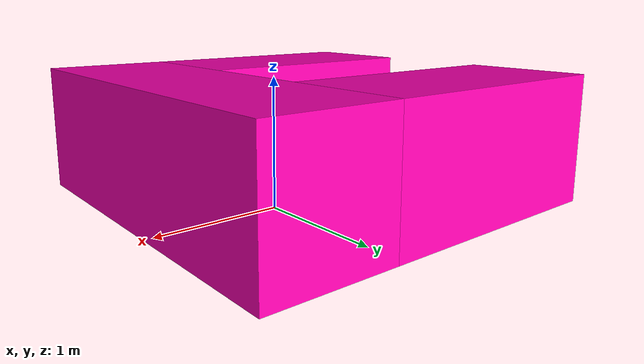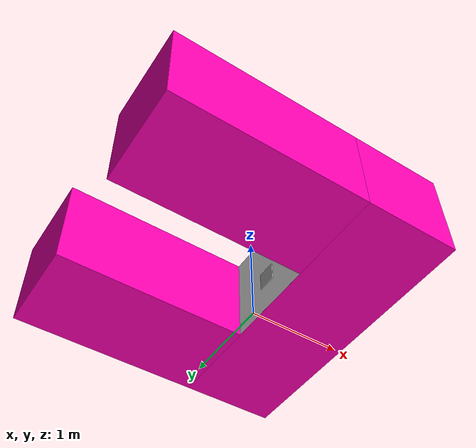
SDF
<?xml version='1.0'?>
<sdf version='1.7'>
  <model name='UDOCK_V2'>
    <link name='link'>
      <pose>0.056744 -0.170156 0.4 0 -0 0</pose>
      <self_collide>0</self_collide>
      <enable_wind>0</enable_wind>
      <kinematic>0</kinematic>
      <visual name='visual'>
        <geometry>
          <box>
            <size>0.01 0.2 0.2</size>
          </box>
        </geometry>
        <material>
          <script>
            <uri>model://target_APRILTAG_36H10_id0/materials/scripts</uri>
            <uri>model://target_APRILTAG_36H10_id0/materials/textures</uri>
            <name>target_APRILTAG_36H10_id0/Diffuse</name>
          </script>
          <shader type='pixel'/>
          <emissive>0 0 0 1</emissive>
        </material>
        <pose>0 0 0 0 -0 0</pose>
        <transparency>0</transparency>
        <cast_shadows>1</cast_shadows>
      </visual>
      <collision name='collision'>
        <laser_retro>0</laser_retro>
        <max_contacts>10</max_contacts>
        <pose>0 0 0 0 -0 0</pose>
        <geometry>
          <box>
            <size>0.01 0.2 0.2</size>
          </box>
        </geometry>
        <surface>
          <friction>
            <ode>
              <mu>1</mu>
              <mu2>1</mu2>
              <fdir1>0 0 0</fdir1>
              <slip1>0</slip1>
              <slip2>0</slip2>
            </ode>
            <torsional>
              <coefficient>1</coefficient>
              <patch_radius>0</patch_radius>
              <surface_radius>0</surface_radius>
              <use_patch_radius>1</use_patch_radius>
              <ode>
                <slip>0</slip>
              </ode>
            </torsional>
          </friction>
          <bounce>
            <restitution_coefficient>0</restitution_coefficient>
            <threshold>1e+06</threshold>
          </bounce>
          <contact>
            <collide_without_contact>0</collide_without_contact>
            <collide_without_contact_bitmask>1</collide_without_contact_bitmask>
            <collide_bitmask>1</collide_bitmask>
            <ode>
              <soft_cfm>0</soft_cfm>
              <soft_erp>0.2</soft_erp>
              <kp>1e+13</kp>
              <kd>1</kd>
              <max_vel>0.01</max_vel>
              <min_depth>0</min_depth>
            </ode>
            <bullet>
              <split_impulse>1</split_impulse>
              <split_impulse_penetration_threshold>-0.01</split_impulse_penetration_threshold>
              <soft_cfm>0</soft_cfm>
              <soft_erp>0.2</soft_erp>
              <kp>1e+13</kp>
              <kd>1</kd>
            </bullet>
          </contact>
        </surface>
      </collision>
    </link>
    <link name='link_3'>
      <inertial>
        <mass>1</mass>
        <inertia>
          <ixx>0.166667</ixx>
          <ixy>0</ixy>
          <ixz>0</ixz>
          <iyy>0.166667</iyy>
          <iyz>0</iyz>
          <izz>0.166667</izz>
        </inertia>
        <pose>0 0 0 0 -0 0</pose>
      </inertial>
      <pose>0.065744 -0.170156 0.5 0 -0 0</pose>
      <gravity>1</gravity>
      <self_collide>0</self_collide>
      <kinematic>0</kinematic>
      <enable_wind>0</enable_wind>
      <visual name='visual'>
        <pose>0 0 0 0 -0 0</pose>
        <geometry>
          <box>
            <size>0.001 1 1</size>
          </box>
        </geometry>
        <material>
          <lighting>1</lighting>
          <script>
            <uri>model://UDOCK_with_id0_dist/materials/scripts</uri>
            <uri>model://UDOCK_with_id0_dist/materials/textures</uri>
            <name>distraction/Diffuse</name>
          </script>
          <shader type='pixel'>
            <normal_map>__default__</normal_map>
          </shader>
          <emissive>0 0 0 1</emissive>
          <ambient>1 1 1 1</ambient>
          <diffuse>1 1 1 1</diffuse>
          <specular>0 0 0 1</specular>
        </material>
        <transparency>0</transparency>
        <cast_shadows>1</cast_shadows>
      </visual>
      <collision name='collision'>
        <laser_retro>0</laser_retro>
        <max_contacts>10</max_contacts>
        <pose>0 0 0 0 -0 0</pose>
        <geometry>
          <box>
            <size>0.001 1 1</size>
          </box>
        </geometry>
        <surface>
          <friction>
            <ode>
              <mu>1</mu>
              <mu2>1</mu2>
              <fdir1>0 0 0</fdir1>
              <slip1>0</slip1>
              <slip2>0</slip2>
            </ode>
            <torsional>
              <coefficient>1</coefficient>
              <patch_radius>0</patch_radius>
              <surface_radius>0</surface_radius>
              <use_patch_radius>1</use_patch_radius>
              <ode>
                <slip>0</slip>
              </ode>
            </torsional>
          </friction>
          <bounce>
            <restitution_coefficient>0</restitution_coefficient>
            <threshold>1e+06</threshold>
          </bounce>
          <contact>
            <collide_without_contact>0</collide_without_contact>
            <collide_without_contact_bitmask>1</collide_without_contact_bitmask>
            <collide_bitmask>1</collide_bitmask>
            <ode>
              <soft_cfm>0</soft_cfm>
              <soft_erp>0.2</soft_erp>
              <kp>1e+13</kp>
              <kd>1</kd>
              <max_vel>0.01</max_vel>
              <min_depth>0</min_depth>
            </ode>
            <bullet>
              <split_impulse>1</split_impulse>
              <split_impulse_penetration_threshold>-0.01</split_impulse_penetration_threshold>
              <soft_cfm>0</soft_cfm>
              <soft_erp>0.2</soft_erp>
              <kp>1e+13</kp>
              <kd>1</kd>
            </bullet>
          </contact>
        </surface>
      </collision>
    </link>
    <link name='link_7'>
      <inertial>
        <mass>1</mass>
        <inertia>
          <ixx>0.166667</ixx>
          <ixy>0</ixy>
          <ixz>0</ixz>
          <iyy>0.166667</iyy>
          <iyz>0</iyz>
          <izz>0.166667</izz>
        </inertia>
        <pose>0 0 0 0 -0 0</pose>
      </inertial>
      <pose>0.566744 -0.170156 0.5 0 -0 0</pose>
      <gravity>1</gravity>
      <self_collide>0</self_collide>
      <kinematic>0</kinematic>
      <enable_wind>0</enable_wind>
      <visual name='visual'>
        <pose>0 0 0 0 -0 0</pose>
        <geometry>
          <box>
            <size>1 3 1</size>
          </box>
        </geometry>
        <material>
          <lighting>1</lighting>
          <script>
            <uri>file://media/materials/scripts/gazebo.material</uri>
            <name>Gazebo/Grey</name>
          </script>
          <shader type='pixel'>
            <normal_map>__default__</normal_map>
          </shader>
          <ambient>1 0 0 1</ambient>
          <diffuse>1 0 0.7 1</diffuse>
          <specular>0.01 0.01 0.01 1</specular>
          <emissive>0 0 0 1</emissive>
        </material>
        <transparency>0</transparency>
        <cast_shadows>1</cast_shadows>
      </visual>
      <collision name='collision'>
        <laser_retro>0</laser_retro>
        <max_contacts>10</max_contacts>
        <pose>0 0 0 0 -0 0</pose>
        <geometry>
          <box>
            <size>1 3 1</size>
          </box>
        </geometry>
        <surface>
          <friction>
            <ode>
              <mu>1</mu>
              <mu2>1</mu2>
              <fdir1>0 0 0</fdir1>
              <slip1>0</slip1>
              <slip2>0</slip2>
            </ode>
            <torsional>
              <coefficient>1</coefficient>
              <patch_radius>0</patch_radius>
              <surface_radius>0</surface_radius>
              <use_patch_radius>1</use_patch_radius>
              <ode>
                <slip>0</slip>
              </ode>
            </torsional>
          </friction>
          <bounce>
            <restitution_coefficient>0</restitution_coefficient>
            <threshold>1e+06</threshold>
          </bounce>
          <contact>
            <collide_without_contact>0</collide_without_contact>
            <collide_without_contact_bitmask>1</collide_without_contact_bitmask>
            <collide_bitmask>1</collide_bitmask>
            <ode>
              <soft_cfm>0</soft_cfm>
              <soft_erp>0.2</soft_erp>
              <kp>1e+13</kp>
              <kd>1</kd>
              <max_vel>0.01</max_vel>
              <min_depth>0</min_depth>
            </ode>
            <bullet>
              <split_impulse>1</split_impulse>
              <split_impulse_penetration_threshold>-0.01</split_impulse_penetration_threshold>
              <soft_cfm>0</soft_cfm>
              <soft_erp>0.2</soft_erp>
              <kp>1e+13</kp>
              <kd>1</kd>
            </bullet>
          </contact>
        </surface>
      </collision>
    </link>
    <link name='link_8'>
      <inertial>
        <mass>1</mass>
        <inertia>
          <ixx>0.166667</ixx>
          <ixy>0</ixy>
          <ixz>0</ixz>
          <iyy>0.166667</iyy>
          <iyz>0</iyz>
          <izz>0.166667</izz>
        </inertia>
        <pose>0 0 0 0 -0 0</pose>
      </inertial>
      <pose>-0.933256 -1.17016 0.5 0 -0 0</pose>
      <gravity>1</gravity>
      <self_collide>0</self_collide>
      <kinematic>0</kinematic>
      <enable_wind>0</enable_wind>
      <visual name='visual'>
        <pose>0 0 0 0 -0 0</pose>
        <geometry>
          <box>
            <size>2 1 1</size>
          </box>
        </geometry>
        <material>
          <lighting>1</lighting>
          <script>
            <uri>file://media/materials/scripts/gazebo.material</uri>
            <name>Gazebo/Grey</name>
          </script>
          <shader type='pixel'>
            <normal_map>__default__</normal_map>
          </shader>
          <ambient>1 0 0 1</ambient>
          <diffuse>1 0 0.7 1</diffuse>
          <specular>0.01 0.01 0.01 1</specular>
          <emissive>0 0 0 1</emissive>
        </material>
        <transparency>0</transparency>
        <cast_shadows>1</cast_shadows>
      </visual>
      <collision name='collision'>
        <laser_retro>0</laser_retro>
        <max_contacts>10</max_contacts>
        <pose>0 0 0 0 -0 0</pose>
        <geometry>
          <box>
            <size>2 1 1</size>
          </box>
        </geometry>
        <surface>
          <friction>
            <ode>
              <mu>1</mu>
              <mu2>1</mu2>
              <fdir1>0 0 0</fdir1>
              <slip1>0</slip1>
              <slip2>0</slip2>
            </ode>
            <torsional>
              <coefficient>1</coefficient>
              <patch_radius>0</patch_radius>
              <surface_radius>0</surface_radius>
              <use_patch_radius>1</use_patch_radius>
              <ode>
                <slip>0</slip>
              </ode>
            </torsional>
          </friction>
          <bounce>
            <restitution_coefficient>0</restitution_coefficient>
            <threshold>1e+06</threshold>
          </bounce>
          <contact>
            <collide_without_contact>0</collide_without_contact>
            <collide_without_contact_bitmask>1</collide_without_contact_bitmask>
            <collide_bitmask>1</collide_bitmask>
            <ode>
              <soft_cfm>0</soft_cfm>
              <soft_erp>0.2</soft_erp>
              <kp>1e+13</kp>
              <kd>1</kd>
              <max_vel>0.01</max_vel>
              <min_depth>0</min_depth>
            </ode>
            <bullet>
              <split_impulse>1</split_impulse>
              <split_impulse_penetration_threshold>-0.01</split_impulse_penetration_threshold>
              <soft_cfm>0</soft_cfm>
              <soft_erp>0.2</soft_erp>
              <kp>1e+13</kp>
              <kd>1</kd>
            </bullet>
          </contact>
        </surface>
      </collision>
    </link>
    <link name='link_9'>
      <inertial>
        <mass>1</mass>
        <inertia>
          <ixx>0.166667</ixx>
          <ixy>0</ixy>
          <ixz>0</ixz>
          <iyy>0.166667</iyy>
          <iyz>0</iyz>
          <izz>0.166667</izz>
        </inertia>
        <pose>0 0 0 0 -0 0</pose>
      </inertial>
      <pose>-0.933256 0.829844 0.5 0 -0 0</pose>
      <gravity>1</gravity>
      <self_collide>0</self_collide>
      <kinematic>0</kinematic>
      <enable_wind>0</enable_wind>
      <visual name='visual'>
        <pose>0 0 0 0 -0 0</pose>
        <geometry>
          <box>
            <size>2 1 1</size>
          </box>
        </geometry>
        <material>
          <lighting>1</lighting>
          <script>
            <uri>file://media/materials/scripts/gazebo.material</uri>
            <name>Gazebo/Grey</name>
          </script>
          <shader type='pixel'>
            <normal_map>__default__</normal_map>
          </shader>
          <ambient>1 0 0 1</ambient>
          <diffuse>1 0 0.7 1</diffuse>
          <specular>0.01 0.01 0.01 1</specular>
          <emissive>0 0 0 1</emissive>
        </material>
        <transparency>0</transparency>
        <cast_shadows>1</cast_shadows>
      </visual>
      <collision name='collision'>
        <laser_retro>0</laser_retro>
        <max_contacts>10</max_contacts>
        <pose>0 0 0 0 -0 0</pose>
        <geometry>
          <box>
            <size>2 1 1</size>
          </box>
        </geometry>
        <surface>
          <friction>
            <ode>
              <mu>1</mu>
              <mu2>1</mu2>
              <fdir1>0 0 0</fdir1>
              <slip1>0</slip1>
              <slip2>0</slip2>
            </ode>
            <torsional>
              <coefficient>1</coefficient>
              <patch_radius>0</patch_radius>
              <surface_radius>0</surface_radius>
              <use_patch_radius>1</use_patch_radius>
              <ode>
                <slip>0</slip>
              </ode>
            </torsional>
          </friction>
          <bounce>
            <restitution_coefficient>0</restitution_coefficient>
            <threshold>1e+06</threshold>
          </bounce>
          <contact>
            <collide_without_contact>0</collide_without_contact>
            <collide_without_contact_bitmask>1</collide_without_contact_bitmask>
            <collide_bitmask>1</collide_bitmask>
            <ode>
              <soft_cfm>0</soft_cfm>
              <soft_erp>0.2</soft_erp>
              <kp>1e+13</kp>
              <kd>1</kd>
              <max_vel>0.01</max_vel>
              <min_depth>0</min_depth>
            </ode>
            <bullet>
              <split_impulse>1</split_impulse>
              <split_impulse_penetration_threshold>-0.01</split_impulse_penetration_threshold>
              <soft_cfm>0</soft_cfm>
              <soft_erp>0.2</soft_erp>
              <kp>1e+13</kp>
              <kd>1</kd>
            </bullet>
          </contact>
        </surface>
      </collision>
    </link>
    <joint name='link_7_JOINT_0' type='fixed'>
      <parent>link_7</parent>
      <child>link_3</child>
      <pose>0 0 0 0 -0 0</pose>
      <physics>
        <ode>
          <limit>
            <cfm>0</cfm>
            <erp>0.2</erp>
          </limit>
          <suspension>
            <cfm>0</cfm>
            <erp>0.2</erp>
          </suspension>
        </ode>
      </physics>
    </joint>
    <joint name='link_7_JOINT_5' type='fixed'>
      <parent>link_7</parent>
      <child>link_9</child>
      <pose>0 0 0 0 -0 0</pose>
      <physics>
        <ode>
          <limit>
            <cfm>0</cfm>
            <erp>0.2</erp>
          </limit>
          <suspension>
            <cfm>0</cfm>
            <erp>0.2</erp>
          </suspension>
        </ode>
      </physics>
    </joint>
    <joint name='link_7_JOINT_6' type='fixed'>
      <parent>link_7</parent>
      <child>link_8</child>
      <pose>0 0 0 0 -0 0</pose>
      <physics>
        <ode>
          <limit>
            <cfm>0</cfm>
            <erp>0.2</erp>
          </limit>
          <suspension>
            <cfm>0</cfm>
            <erp>0.2</erp>
          </suspension>
        </ode>
      </physics>
    </joint>
    <joint name='link_7_JOINT_8' type='fixed'>
      <parent>link_7</parent>
      <child>link</child>
      <pose>0 0 0 0 -0 0</pose>
      <physics>
        <ode>
          <limit>
            <cfm>0</cfm>
            <erp>0.2</erp>
          </limit>
          <suspension>
            <cfm>0</cfm>
            <erp>0.2</erp>
          </suspension>
        </ode>
      </physics>
    </joint>
    <static>1</static>
    <allow_auto_disable>1</allow_auto_disable>
  </model>
</sdf>
